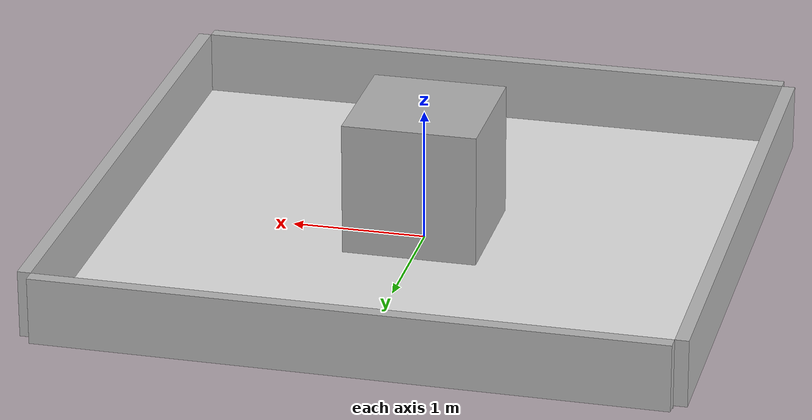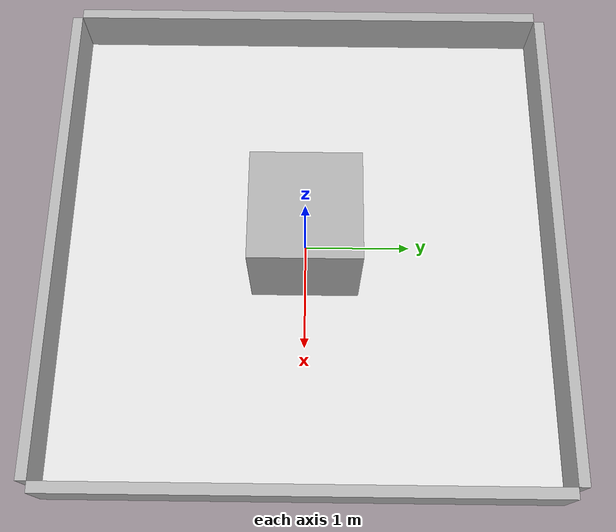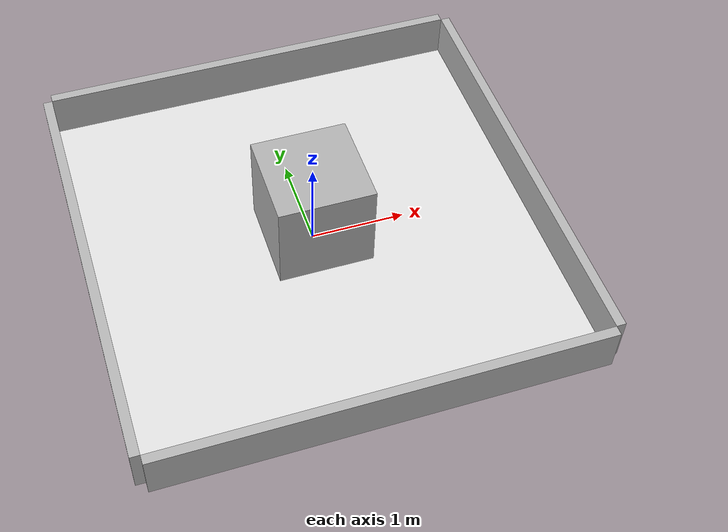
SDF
<?xml version="1.0" ?>
<sdf version="1.6">

  <world name="air_table">
    <physics type="ode">
      <max_step_size>0.001</max_step_size>
      <real_time_factor>1.0</real_time_factor>
      <real_time_update_rate>1000</real_time_update_rate>

      <ode>
        <solver>
          <type>quick</type>
          <iters>50</iters>
          <sor>1.3</sor>
        </solver>
        <constraints>
          <cfm>0.0</cfm>
          <erp>0.2</erp>
        </constraints>
      </ode>
    </physics>

    <gravity>0 0 -9.81</gravity>

    <!-- Air table -->
    <model name="table">
      <static>true</static>
      <link name="link">
        <collision name="collision">
          <geometry>
            <box>
              <size>4.572 4.572 0.05</size>
            </box>
          </geometry>
          <surface>
            <friction>
              <ode>
                <mu>0.001</mu>
                <mu2>0.001</mu2>
              </ode>
            </friction>
          </surface>
        </collision>
        <visual name="visual">
          <geometry>
            <box>
              <size>4.572 4.572 0.05</size>
            </box>
          </geometry>
          <material>
            <ambient>0.9 0.9 0.9 1</ambient>
          </material>
        </visual>
      </link>
    </model>

    <!-- Target satellite -->
    <model name="target_sat">
      <static>true</static>
      <pose>0 0 0.55 0 0 0</pose>
      <link name="link">
        <collision name="collision">
          <geometry>
            <box>
              <size>1 1 1</size>
            </box>
          </geometry>
        </collision>
        <visual name="visual">
          <geometry>
            <box>
              <size>1 1 1</size>
            </box>
          </geometry>
          <material>
            <ambient>0.7 0.7 0.7 1</ambient>
          </material>
        </visual>
      </link>
    </model>
<!-- Perimeter walls -->

    <!-- +X wall -->
    <model name="wall_pos_x">
      <static>true</static>
      <pose>2.336 0 0.25 0 0 0</pose>
      <link name="link">
        <collision name="collision">
          <geometry>
            <box>
              <size>0.10 4.572 0.50</size>
            </box>
          </geometry>
        </collision>
        <visual name="visual">
          <geometry>
            <box>
              <size>0.10 4.572 0.50</size>
            </box>
          </geometry>
        </visual>
      </link>
    </model>

    <!-- -X wall -->
    <model name="wall_neg_x">
      <static>true</static>
      <pose>-2.336 0 0.25 0 0 0</pose>
      <link name="link">
        <collision name="collision">
          <geometry>
            <box>
              <size>0.10 4.572 0.50</size>
            </box>
          </geometry>
        </collision>
        <visual name="visual">
          <geometry>
            <box>
              <size>0.10 4.572 0.50</size>
            </box>
          </geometry>
        </visual>
      </link>
    </model>

    <!-- +Y wall -->
    <model name="wall_pos_y">
      <static>true</static>
      <pose>0 2.336 0.25 0 0 0</pose>
      <link name="link">
        <collision name="collision">
          <geometry>
            <box>
              <size>4.572 0.10 0.50</size>
            </box>
          </geometry>
        </collision>
        <visual name="visual">
          <geometry>
            <box>
              <size>4.572 0.10 0.50</size>
            </box>
          </geometry>
        </visual>
      </link>
    </model>

    <!-- -Y wall -->
    <model name="wall_neg_y">
      <static>true</static>
      <pose>0 -2.336 0.25 0 0 0</pose>
      <link name="link">
        <collision name="collision">
          <geometry>
            <box>
              <size>4.572 0.10 0.50</size>
            </box>
          </geometry>
        </collision>
        <visual name="visual">
          <geometry>
            <box>
              <size>4.572 0.10 0.50</size>
            </box>
          </geometry>
        </visual>
      </link>
    </model>

    <plugin name="gazebo_ros_state" filename="libgazebo_ros_state.so"/>

  </world>
</sdf>
